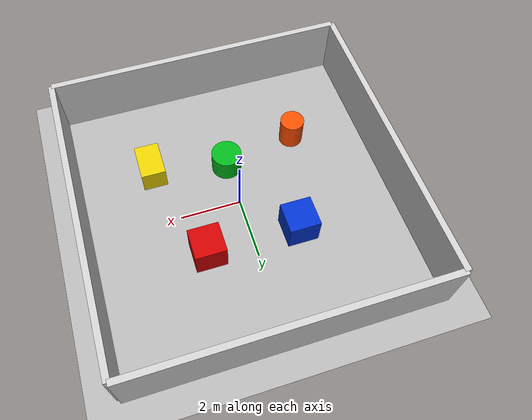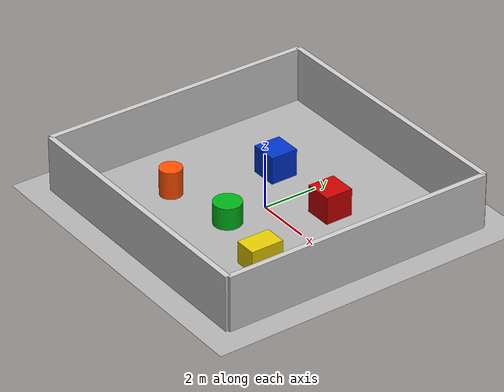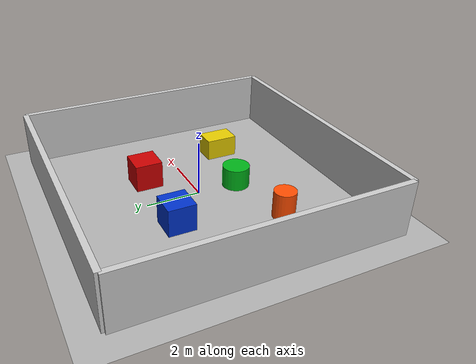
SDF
<?xml version="1.0"?>

<sdf version="1.9">

  <world name="vacuum_world">

    <!-- ================= PHYSICS ================= -->

    <physics name="default_physics" type="ode">
      <max_step_size>0.001</max_step_size>
      <real_time_factor>1.0</real_time_factor>
      <real_time_update_rate>1000</real_time_update_rate>
    </physics>

    <gravity>0 0 -9.81</gravity>

    <!-- ================= SYSTEM PLUGINS ================= -->

    <plugin
      filename="gz-sim-physics-system"
      name="gz::sim::systems::Physics"/>

    <plugin
      filename="gz-sim-user-commands-system"
      name="gz::sim::systems::UserCommands"/>

    <plugin
      filename="gz-sim-scene-broadcaster-system"
      name="gz::sim::systems::SceneBroadcaster"/>

    <!-- ================= SENSORS ================= -->

      <plugin
        filename="gz-sim-sensors-system"
        name="gz::sim::systems::Sensors">
        <render_engine>ogre2</render_engine>
      </plugin>

      <plugin
        filename="gz-sim-imu-system"
        name="gz::sim::systems::Imu">
      </plugin>

    <!-- ================= LIGHT ================= -->

    <light
      type="directional"
      name="sun">

      <pose>0 0 10 0 0 0</pose>

      <cast_shadows>true</cast_shadows>

      <diffuse>0.8 0.8 0.8 1</diffuse>

      <specular>0.2 0.2 0.2 1</specular>

      <direction>-0.5 0.5 -1</direction>

    </light>

    <!-- FLOOR -->

    <model name="floor">

      <static>true</static>

      <link name="floor_link">

        <collision name="floor_collision">

          <geometry>
            <plane>
              <normal>0 0 1</normal>
              <size>20 20</size>
            </plane>
          </geometry>

        </collision>

        <visual name="floor_visual">

          <geometry>
            <plane>
              <normal>0 0 1</normal>
              <size>20 20</size>
            </plane>
          </geometry>

          <material>
            <ambient>0.7 0.7 0.7 1</ambient>
            <diffuse>0.7 0.7 0.7 1</diffuse>
            <specular>0.1 0.1 0.1 1</specular>
          </material>

        </visual>

      </link>

    </model>

    <!-- WALL 1 - LEFT -->

    <model name="wall_left">

      <static>true</static>

      <pose>0 5 1 0 0 0</pose>

      <link name="wall_link">

        <collision name="collision">

          <geometry>
            <box>
              <size>10 0.2 2</size>
            </box>
          </geometry>

        </collision>

        <visual name="visual">

          <geometry>
            <box>
              <size>10 0.2 2</size>
            </box>
          </geometry>

          <material>
            <ambient>0.8 0.8 0.8 1</ambient>
            <diffuse>0.8 0.8 0.8 1</diffuse>
            <specular>0.2 0.2 0.2 1</specular>
          </material>

        </visual>

      </link>

    </model>

    <!-- WALL 2 - RIGHT -->

    <model name="wall_right">

      <static>true</static>

      <pose>0 -5 1 0 0 0</pose>

      <link name="wall_link">

        <collision name="collision">

          <geometry>
            <box>
              <size>10 0.2 2</size>
            </box>
          </geometry>

        </collision>

        <visual name="visual">

          <geometry>
            <box>
              <size>10 0.2 2</size>
            </box>
          </geometry>

          <material>
            <ambient>0.8 0.8 0.8 1</ambient>
            <diffuse>0.8 0.8 0.8 1</diffuse>
            <specular>0.2 0.2 0.2 1</specular>
          </material>

        </visual>

      </link>

    </model>

    <!-- WALL 3 - FRONT -->

    <model name="wall_front">

      <static>true</static>

      <pose>5 0 1 0 0 0</pose>

      <link name="wall_link">

        <collision name="collision">

          <geometry>
            <box>
              <size>0.2 10 2</size>
            </box>
          </geometry>

        </collision>

        <visual name="visual">

          <geometry>
            <box>
              <size>0.2 10 2</size>
            </box>
          </geometry>

          <material>
            <ambient>0.8 0.8 0.8 1</ambient>
            <diffuse>0.8 0.8 0.8 1</diffuse>
            <specular>0.2 0.2 0.2 1</specular>
          </material>

        </visual>

      </link>

    </model>

    <!-- WALL 4 - BACK -->

    <model name="wall_back">

      <static>true</static>

      <pose>-5 0 1 0 0 0</pose>

      <link name="wall_link">

        <collision name="collision">

          <geometry>
            <box>
              <size>0.2 10 2</size>
            </box>
          </geometry>

        </collision>

        <visual name="visual">

          <geometry>
            <box>
              <size>0.2 10 2</size>
            </box>
          </geometry>

          <material>
            <ambient>0.8 0.8 0.8 1</ambient>
            <diffuse>0.8 0.8 0.8 1</diffuse>
            <specular>0.2 0.2 0.2 1</specular>
          </material>

        </visual>

      </link>

    </model>

    <!-- OBSTACLE 1 - RED BOX -->

    <model name="obstacle_1">

      <static>true</static>

      <pose>1.5 1.5 0.5 0 0 0</pose>

      <link name="obstacle_link">

        <collision name="collision">

          <geometry>
            <box>
              <size>1 1 1</size>
            </box>
          </geometry>

        </collision>

        <visual name="visual">

          <geometry>
            <box>
              <size>1 1 1</size>
            </box>
          </geometry>

          <material>
            <ambient>0.8 0.0 0.0 1</ambient>
            <diffuse>0.8 0.0 0.0 1</diffuse>
            <specular>0.2 0.2 0.2 1</specular>
          </material>

        </visual>

      </link>

    </model>

    <!-- OBSTACLE 2 - BLUE BOX -->

    <model name="obstacle_2">

      <static>true</static>

      <pose>-1.5 1.5 0.5 0 0 0</pose>

      <link name="obstacle_link">

        <collision name="collision">

          <geometry>
            <box>
              <size>1 1 1</size>
            </box>
          </geometry>

        </collision>

        <visual name="visual">

          <geometry>
            <box>
              <size>1 1 1</size>
            </box>
          </geometry>

          <material>
            <ambient>0.0 0.2 0.8 1</ambient>
            <diffuse>0.0 0.2 0.8 1</diffuse>
            <specular>0.2 0.2 0.2 1</specular>
          </material>

        </visual>

      </link>

    </model>

    <!-- OBSTACLE 3 - GREEN CYLINDER -->

    <model name="obstacle_3">

      <static>true</static>

      <pose>0 -1.5 0.4 0 0 0</pose>

      <link name="obstacle_link">

        <collision name="collision">

          <geometry>

            <cylinder>
              <radius>0.5</radius>
              <length>0.8</length>
            </cylinder>

          </geometry>

        </collision>

        <visual name="visual">

          <geometry>

            <cylinder>
              <radius>0.5</radius>
              <length>0.8</length>
            </cylinder>

          </geometry>

          <material>
            <ambient>0.0 0.7 0.1 1</ambient>
            <diffuse>0.0 0.7 0.1 1</diffuse>
            <specular>0.2 0.2 0.2 1</specular>
          </material>

        </visual>

      </link>

    </model>

    <!-- OBSTACLE 4 - YELLOW BOX -->

    <model name="obstacle_4">

      <static>true</static>

      <pose>2.5 -2.0 0.4 0 0 0</pose>

      <link name="obstacle_link">

        <collision name="collision">

          <geometry>
            <box>
              <size>0.8 1.2 0.8</size>
            </box>
          </geometry>

        </collision>

        <visual name="visual">

          <geometry>
            <box>
              <size>0.8 1.2 0.8</size>
            </box>
          </geometry>

          <material>
            <ambient>0.9 0.8 0.0 1</ambient>
            <diffuse>0.9 0.8 0.0 1</diffuse>
            <specular>0.2 0.2 0.2 1</specular>
          </material>

        </visual>

      </link>

    </model>

    <!-- OBSTACLE 5 - ORANGE CYLINDER -->

    <model name="obstacle_5">

      <static>true</static>

      <pose>-2.5 -2.0 0.5 0 0 0</pose>

      <link name="obstacle_link">

        <collision name="collision">

          <geometry>

            <cylinder>
              <radius>0.4</radius>
              <length>1.0</length>
            </cylinder>

          </geometry>

        </collision>

        <visual name="visual">

          <geometry>

            <cylinder>
              <radius>0.4</radius>
              <length>1.0</length>
            </cylinder>

          </geometry>

          <material>
            <ambient>1.0 0.3 0.0 1</ambient>
            <diffuse>1.0 0.3 0.0 1</diffuse>
            <specular>0.2 0.2 0.2 1</specular>
          </material>

        </visual>

      </link>

    </model>

  </world>

</sdf>
